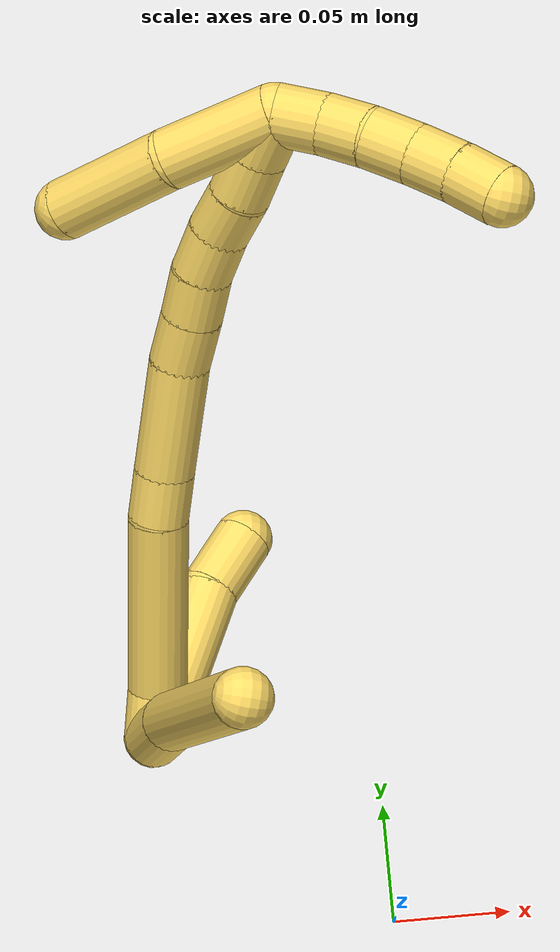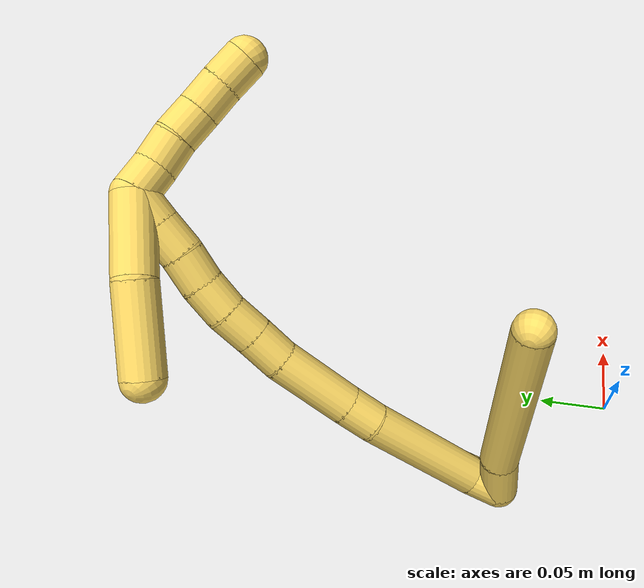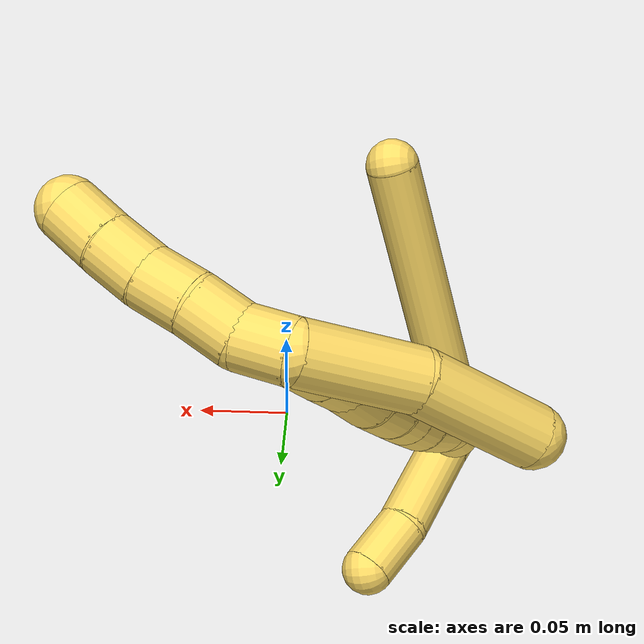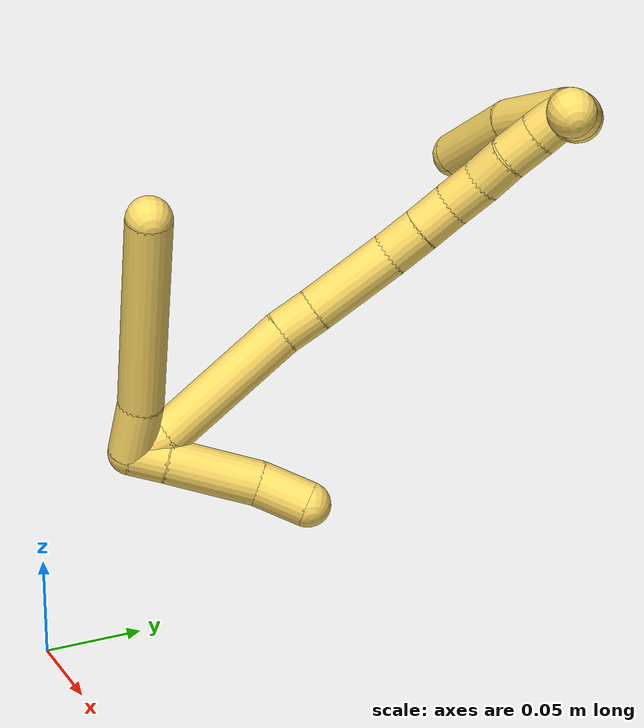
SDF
<sdf version="1.7">
 <world name="default">
  <model name="5">
   <static>0</static>
   <link name="5">
    <collision name="collision-cylinder-e_1_2_8">
     <pose>0.012376 -0.01067 0.000919 1.48484 0.857469 0.794228</pose>
     <geometry><cylinder><radius>0.0125</radius><length>0.032733</length></cylinder></geometry>
     <surface>
      <friction><ode><mu>1.16</mu><mu2>1.16</mu2><slip1>0</slip1><slip2>0</slip2></ode></friction>
      <contact><ode><kp>1e+06</kp><kd>1</kd><max_vel>0</max_vel><min_depth>0.001</min_depth></ode></contact>
     </surface>
    </collision>
    <visual name="visual-cylinder-e_1_2_8">
     <pose>0.012376 -0.01067 0.000919 1.48484 0.857469 0.794228</pose>
     <geometry><cylinder><radius>0.0125</radius><length>0.032733</length></cylinder></geometry>
     <material><ambient>1 0.858824 0.4 1</ambient></material>
    </visual>
    <collision name="collision-cylinder-e_2_8_6">
     <pose>0.06351 -0.065279 0.004093 1.51954 0.722167 0.688924</pose>
     <geometry><cylinder><radius>0.0125</radius><length>0.117267</length></cylinder></geometry>
     <surface>
      <friction><ode><mu>1.16</mu><mu2>1.16</mu2><slip1>0</slip1><slip2>0</slip2></ode></friction>
      <contact><ode><kp>1e+06</kp><kd>1</kd><max_vel>0</max_vel><min_depth>0.001</min_depth></ode></contact>
     </surface>
    </collision>
    <visual name="visual-cylinder-e_2_8_6">
     <pose>0.06351 -0.065279 0.004093 1.51954 0.722167 0.688924</pose>
     <geometry><cylinder><radius>0.0125</radius><length>0.117267</length></cylinder></geometry>
     <material><ambient>1 0.858824 0.4 1</ambient></material>
    </visual>
    <collision name="collision-cylinder-e_1_2_9">
     <pose>0.006253 0.007378 -0.002963 -1.95266 0.666401 -0.946337</pose>
     <geometry><cylinder><radius>0.0125</radius><length>0.02023</length></cylinder></geometry>
     <surface>
      <friction><ode><mu>1.16</mu><mu2>1.16</mu2><slip1>0</slip1><slip2>0</slip2></ode></friction>
      <contact><ode><kp>1e+06</kp><kd>1</kd><max_vel>0</max_vel><min_depth>0.001</min_depth></ode></contact>
     </surface>
    </collision>
    <visual name="visual-cylinder-e_1_2_9">
     <pose>0.006253 0.007378 -0.002963 -1.95266 0.666401 -0.946337</pose>
     <geometry><cylinder><radius>0.0125</radius><length>0.02023</length></cylinder></geometry>
     <material><ambient>1 0.858824 0.4 1</ambient></material>
    </visual>
    <collision name="collision-cylinder-e_2_9_10">
     <pose>0.027452 0.034233 -0.012643 -1.90289 0.627642 -0.854387</pose>
     <geometry><cylinder><radius>0.0125</radius><length>0.050905</length></cylinder></geometry>
     <surface>
      <friction><ode><mu>1.16</mu><mu2>1.16</mu2><slip1>0</slip1><slip2>0</slip2></ode></friction>
      <contact><ode><kp>1e+06</kp><kd>1</kd><max_vel>0</max_vel><min_depth>0.001</min_depth></ode></contact>
     </surface>
    </collision>
    <visual name="visual-cylinder-e_2_9_10">
     <pose>0.027452 0.034233 -0.012643 -1.90289 0.627642 -0.854387</pose>
     <geometry><cylinder><radius>0.0125</radius><length>0.050905</length></cylinder></geometry>
     <material><ambient>1 0.858824 0.4 1</ambient></material>
    </visual>
    <collision name="collision-cylinder-e_3_10_5">
     <pose>0.049868 0.064046 -0.026116 -2.14971 0.543932 -0.951849</pose>
     <geometry><cylinder><radius>0.0125</radius><length>0.028864</length></cylinder></geometry>
     <surface>
      <friction><ode><mu>1.16</mu><mu2>1.16</mu2><slip1>0</slip1><slip2>0</slip2></ode></friction>
      <contact><ode><kp>1e+06</kp><kd>1</kd><max_vel>0</max_vel><min_depth>0.001</min_depth></ode></contact>
     </surface>
    </collision>
    <visual name="visual-cylinder-e_3_10_5">
     <pose>0.049868 0.064046 -0.026116 -2.14971 0.543932 -0.951849</pose>
     <geometry><cylinder><radius>0.0125</radius><length>0.028864</length></cylinder></geometry>
     <material><ambient>1 0.858824 0.4 1</ambient></material>
    </visual>
    <collision name="collision-cylinder-e_1_2_11">
     <pose>0.010019 0.003773 0.001534 -1.18467 1.18469 -0.850463</pose>
     <geometry><cylinder><radius>0.0125</radius><length>0.02163</length></cylinder></geometry>
     <surface>
      <friction><ode><mu>1.16</mu><mu2>1.16</mu2><slip1>0</slip1><slip2>0</slip2></ode></friction>
      <contact><ode><kp>1e+06</kp><kd>1</kd><max_vel>0</max_vel><min_depth>0.001</min_depth></ode></contact>
     </surface>
    </collision>
    <visual name="visual-cylinder-e_1_2_11">
     <pose>0.010019 0.003773 0.001534 -1.18467 1.18469 -0.850463</pose>
     <geometry><cylinder><radius>0.0125</radius><length>0.02163</length></cylinder></geometry>
     <material><ambient>1 0.858824 0.4 1</ambient></material>
    </visual>
    <collision name="collision-cylinder-e_2_11_12">
     <pose>0.05988 0.010656 0.013862 -0.280511 1.29599 -0.212955</pose>
     <geometry><cylinder><radius>0.0125</radius><length>0.082791</length></cylinder></geometry>
     <surface>
      <friction><ode><mu>1.16</mu><mu2>1.16</mu2><slip1>0</slip1><slip2>0</slip2></ode></friction>
      <contact><ode><kp>1e+06</kp><kd>1</kd><max_vel>0</max_vel><min_depth>0.001</min_depth></ode></contact>
     </surface>
    </collision>
    <visual name="visual-cylinder-e_2_11_12">
     <pose>0.05988 0.010656 0.013862 -0.280511 1.29599 -0.212955</pose>
     <geometry><cylinder><radius>0.0125</radius><length>0.082791</length></cylinder></geometry>
     <material><ambient>1 0.858824 0.4 1</ambient></material>
    </visual>
    <collision name="collision-cylinder-e_3_12_13">
     <pose>0.110273 0.015214 0.026192 -0.755815 1.37329 -0.629214</pose>
     <geometry><cylinder><radius>0.0125</radius><length>0.02152</length></cylinder></geometry>
     <surface>
      <friction><ode><mu>1.16</mu><mu2>1.16</mu2><slip1>0</slip1><slip2>0</slip2></ode></friction>
      <contact><ode><kp>1e+06</kp><kd>1</kd><max_vel>0</max_vel><min_depth>0.001</min_depth></ode></contact>
     </surface>
    </collision>
    <visual name="visual-cylinder-e_3_12_13">
     <pose>0.110273 0.015214 0.026192 -0.755815 1.37329 -0.629214</pose>
     <geometry><cylinder><radius>0.0125</radius><length>0.02152</length></cylinder></geometry>
     <material><ambient>1 0.858824 0.4 1</ambient></material>
    </visual>
    <collision name="collision-cylinder-e_4_13_14">
     <pose>0.145334 0.018969 0.031241 -0.581198 1.401 -0.494011</pose>
     <geometry><cylinder><radius>0.0125</radius><length>0.049733</length></cylinder></geometry>
     <surface>
      <friction><ode><mu>1.16</mu><mu2>1.16</mu2><slip1>0</slip1><slip2>0</slip2></ode></friction>
      <contact><ode><kp>1e+06</kp><kd>1</kd><max_vel>0</max_vel><min_depth>0.001</min_depth></ode></contact>
     </surface>
    </collision>
    <visual name="visual-cylinder-e_4_13_14">
     <pose>0.145334 0.018969 0.031241 -0.581198 1.401 -0.494011</pose>
     <geometry><cylinder><radius>0.0125</radius><length>0.049733</length></cylinder></geometry>
     <material><ambient>1 0.858824 0.4 1</ambient></material>
    </visual>
    <collision name="collision-cylinder-e_5_14_15">
     <pose>0.180859 0.021223 0.035401 0.080896 1.51187 0.076269</pose>
     <geometry><cylinder><radius>0.0125</radius><length>0.02207</length></cylinder></geometry>
     <surface>
      <friction><ode><mu>1.16</mu><mu2>1.16</mu2><slip1>0</slip1><slip2>0</slip2></ode></friction>
      <contact><ode><kp>1e+06</kp><kd>1</kd><max_vel>0</max_vel><min_depth>0.001</min_depth></ode></contact>
     </surface>
    </collision>
    <visual name="visual-cylinder-e_5_14_15">
     <pose>0.180859 0.021223 0.035401 0.080896 1.51187 0.076269</pose>
     <geometry><cylinder><radius>0.0125</radius><length>0.02207</length></cylinder></geometry>
     <material><ambient>1 0.858824 0.4 1</ambient></material>
    </visual>
    <collision name="collision-cylinder-e_6_15_16">
     <pose>0.202247 0.021104 0.036974 0.072599 1.48152 0.066395</pose>
     <geometry><cylinder><radius>0.0125</radius><length>0.020827</length></cylinder></geometry>
     <surface>
      <friction><ode><mu>1.16</mu><mu2>1.16</mu2><slip1>0</slip1><slip2>0</slip2></ode></friction>
      <contact><ode><kp>1e+06</kp><kd>1</kd><max_vel>0</max_vel><min_depth>0.001</min_depth></ode></contact>
     </surface>
    </collision>
    <visual name="visual-cylinder-e_6_15_16">
     <pose>0.202247 0.021104 0.036974 0.072599 1.48152 0.066395</pose>
     <geometry><cylinder><radius>0.0125</radius><length>0.020827</length></cylinder></geometry>
     <material><ambient>1 0.858824 0.4 1</ambient></material>
    </visual>
    <collision name="collision-cylinder-e_7_16_17">
     <pose>0.223059 0.020207 0.037488 2.03186 1.48238 1.95108</pose>
     <geometry><cylinder><radius>0.0125</radius><length>0.020963</length></cylinder></geometry>
     <surface>
      <friction><ode><mu>1.16</mu><mu2>1.16</mu2><slip1>0</slip1><slip2>0</slip2></ode></friction>
      <contact><ode><kp>1e+06</kp><kd>1</kd><max_vel>0</max_vel><min_depth>0.001</min_depth></ode></contact>
     </surface>
    </collision>
    <visual name="visual-cylinder-e_7_16_17">
     <pose>0.223059 0.020207 0.037488 2.03186 1.48238 1.95108</pose>
     <geometry><cylinder><radius>0.0125</radius><length>0.020963</length></cylinder></geometry>
     <material><ambient>1 0.858824 0.4 1</ambient></material>
    </visual>
    <collision name="collision-cylinder-e_8_17_18">
     <pose>0.243376 0.0174 0.036023 2.06006 1.34759 1.85197</pose>
     <geometry><cylinder><radius>0.0125</radius><length>0.020257</length></cylinder></geometry>
     <surface>
      <friction><ode><mu>1.16</mu><mu2>1.16</mu2><slip1>0</slip1><slip2>0</slip2></ode></friction>
      <contact><ode><kp>1e+06</kp><kd>1</kd><max_vel>0</max_vel><min_depth>0.001</min_depth></ode></contact>
     </surface>
    </collision>
    <visual name="visual-cylinder-e_8_17_18">
     <pose>0.243376 0.0174 0.036023 2.06006 1.34759 1.85197</pose>
     <geometry><cylinder><radius>0.0125</radius><length>0.020257</length></cylinder></geometry>
     <material><ambient>1 0.858824 0.4 1</ambient></material>
    </visual>
    <collision name="collision-cylinder-e_9_18_19">
     <pose>0.263223 0.014589 0.03448 2.10294 1.47432 2.0177</pose>
     <geometry><cylinder><radius>0.0125</radius><length>0.020032</length></cylinder></geometry>
     <surface>
      <friction><ode><mu>1.16</mu><mu2>1.16</mu2><slip1>0</slip1><slip2>0</slip2></ode></friction>
      <contact><ode><kp>1e+06</kp><kd>1</kd><max_vel>0</max_vel><min_depth>0.001</min_depth></ode></contact>
     </surface>
    </collision>
    <visual name="visual-cylinder-e_9_18_19">
     <pose>0.263223 0.014589 0.03448 2.10294 1.47432 2.0177</pose>
     <geometry><cylinder><radius>0.0125</radius><length>0.020032</length></cylinder></geometry>
     <material><ambient>1 0.858824 0.4 1</ambient></material>
    </visual>
    <collision name="collision-cylinder-e_10_19_1">
     <pose>0.283195 0.012601 0.033378 2.05794 1.4407 1.93934</pose>
     <geometry><cylinder><radius>0.0125</radius><length>0.020177</length></cylinder></geometry>
     <surface>
      <friction><ode><mu>1.16</mu><mu2>1.16</mu2><slip1>0</slip1><slip2>0</slip2></ode></friction>
      <contact><ode><kp>1e+06</kp><kd>1</kd><max_vel>0</max_vel><min_depth>0.001</min_depth></ode></contact>
     </surface>
    </collision>
    <visual name="visual-cylinder-e_10_19_1">
     <pose>0.283195 0.012601 0.033378 2.05794 1.4407 1.93934</pose>
     <geometry><cylinder><radius>0.0125</radius><length>0.020177</length></cylinder></geometry>
     <material><ambient>1 0.858824 0.4 1</ambient></material>
    </visual>
    <collision name="collision-cylinder-e_1_1_20">
     <pose>0.276744 0.015806 0.049173 -0.259777 -0.769722 0.105722</pose>
     <geometry><cylinder><radius>0.0125</radius><length>0.047286</length></cylinder></geometry>
     <surface>
      <friction><ode><mu>1.16</mu><mu2>1.16</mu2><slip1>0</slip1><slip2>0</slip2></ode></friction>
      <contact><ode><kp>1e+06</kp><kd>1</kd><max_vel>0</max_vel><min_depth>0.001</min_depth></ode></contact>
     </surface>
    </collision>
    <visual name="visual-cylinder-e_1_1_20">
     <pose>0.276744 0.015806 0.049173 -0.259777 -0.769722 0.105722</pose>
     <geometry><cylinder><radius>0.0125</radius><length>0.047286</length></cylinder></geometry>
     <material><ambient>1 0.858824 0.4 1</ambient></material>
    </visual>
    <collision name="collision-cylinder-e_2_20_4">
     <pose>0.240169 0.029232 0.079992 -0.561516 -0.868572 0.26593</pose>
     <geometry><cylinder><radius>0.0125</radius><length>0.052714</length></cylinder></geometry>
     <surface>
      <friction><ode><mu>1.16</mu><mu2>1.16</mu2><slip1>0</slip1><slip2>0</slip2></ode></friction>
      <contact><ode><kp>1e+06</kp><kd>1</kd><max_vel>0</max_vel><min_depth>0.001</min_depth></ode></contact>
     </surface>
    </collision>
    <visual name="visual-cylinder-e_2_20_4">
     <pose>0.240169 0.029232 0.079992 -0.561516 -0.868572 0.26593</pose>
     <geometry><cylinder><radius>0.0125</radius><length>0.052714</length></cylinder></geometry>
     <material><ambient>1 0.858824 0.4 1</ambient></material>
    </visual>
    <collision name="collision-cylinder-e_1_1_21">
     <pose>0.294906 0.007953 0.023551 2.77937 0.171646 0.87845</pose>
     <geometry><cylinder><radius>0.0125</radius><length>0.02</length></cylinder></geometry>
     <surface>
      <friction><ode><mu>1.16</mu><mu2>1.16</mu2><slip1>0</slip1><slip2>0</slip2></ode></friction>
      <contact><ode><kp>1e+06</kp><kd>1</kd><max_vel>0</max_vel><min_depth>0.001</min_depth></ode></contact>
     </surface>
    </collision>
    <visual name="visual-cylinder-e_1_1_21">
     <pose>0.294906 0.007953 0.023551 2.77937 0.171646 0.87845</pose>
     <geometry><cylinder><radius>0.0125</radius><length>0.02</length></cylinder></geometry>
     <material><ambient>1 0.858824 0.4 1</ambient></material>
    </visual>
    <collision name="collision-cylinder-e_2_21_22">
     <pose>0.298912 -0.001754 0.006849 2.44883 0.231849 0.624168</pose>
     <geometry><cylinder><radius>0.0125</radius><length>0.02</length></cylinder></geometry>
     <surface>
      <friction><ode><mu>1.16</mu><mu2>1.16</mu2><slip1>0</slip1><slip2>0</slip2></ode></friction>
      <contact><ode><kp>1e+06</kp><kd>1</kd><max_vel>0</max_vel><min_depth>0.001</min_depth></ode></contact>
     </surface>
    </collision>
    <visual name="visual-cylinder-e_2_21_22">
     <pose>0.298912 -0.001754 0.006849 2.44883 0.231849 0.624168</pose>
     <geometry><cylinder><radius>0.0125</radius><length>0.02</length></cylinder></geometry>
     <material><ambient>1 0.858824 0.4 1</ambient></material>
    </visual>
    <collision name="collision-cylinder-e_3_22_23">
     <pose>0.302362 -0.013642 -0.008795 2.53384 0.115473 0.364551</pose>
     <geometry><cylinder><radius>0.0125</radius><length>0.02</length></cylinder></geometry>
     <surface>
      <friction><ode><mu>1.16</mu><mu2>1.16</mu2><slip1>0</slip1><slip2>0</slip2></ode></friction>
      <contact><ode><kp>1e+06</kp><kd>1</kd><max_vel>0</max_vel><min_depth>0.001</min_depth></ode></contact>
     </surface>
    </collision>
    <visual name="visual-cylinder-e_3_22_23">
     <pose>0.302362 -0.013642 -0.008795 2.53384 0.115473 0.364551</pose>
     <geometry><cylinder><radius>0.0125</radius><length>0.02</length></cylinder></geometry>
     <material><ambient>1 0.858824 0.4 1</ambient></material>
    </visual>
    <collision name="collision-cylinder-e_4_23_24">
     <pose>0.304821 -0.02602 -0.024252 2.39871 0.131036 0.333754</pose>
     <geometry><cylinder><radius>0.0125</radius><length>0.02</length></cylinder></geometry>
     <surface>
      <friction><ode><mu>1.16</mu><mu2>1.16</mu2><slip1>0</slip1><slip2>0</slip2></ode></friction>
      <contact><ode><kp>1e+06</kp><kd>1</kd><max_vel>0</max_vel><min_depth>0.001</min_depth></ode></contact>
     </surface>
    </collision>
    <visual name="visual-cylinder-e_4_23_24">
     <pose>0.304821 -0.02602 -0.024252 2.39871 0.131036 0.333754</pose>
     <geometry><cylinder><radius>0.0125</radius><length>0.02</length></cylinder></geometry>
     <material><ambient>1 0.858824 0.4 1</ambient></material>
    </visual>
    <collision name="collision-cylinder-e_5_24_3">
     <pose>0.306905 -0.039804 -0.038575 2.35217 0.077876 0.186495</pose>
     <geometry><cylinder><radius>0.0125</radius><length>0.02</length></cylinder></geometry>
     <surface>
      <friction><ode><mu>1.16</mu><mu2>1.16</mu2><slip1>0</slip1><slip2>0</slip2></ode></friction>
      <contact><ode><kp>1e+06</kp><kd>1</kd><max_vel>0</max_vel><min_depth>0.001</min_depth></ode></contact>
     </surface>
    </collision>
    <visual name="visual-cylinder-e_5_24_3">
     <pose>0.306905 -0.039804 -0.038575 2.35217 0.077876 0.186495</pose>
     <geometry><cylinder><radius>0.0125</radius><length>0.02</length></cylinder></geometry>
     <material><ambient>1 0.858824 0.4 1</ambient></material>
    </visual>
    <collision name="collision-sphere-3">
     <pose>0.307683 -0.046882 -0.045596 0 -0 0</pose>
     <geometry><sphere><radius>0.0125</radius></sphere></geometry>
     <surface>
      <friction><ode><mu>1.16</mu><mu2>1.16</mu2><slip1>0</slip1><slip2>0</slip2></ode></friction>
      <contact><ode><kp>1e+06</kp><kd>1</kd><max_vel>0</max_vel><min_depth>0.001</min_depth></ode></contact>
     </surface>
    </collision>
    <visual name="visual-sphere-3">
     <pose>0.307683 -0.046882 -0.045596 0 -0 0</pose>
     <geometry><sphere><radius>0.0125</radius></sphere></geometry>
     <material><ambient>1 0.858824 0.4 1</ambient></material>
    </visual>
    <collision name="collision-sphere-24">
     <pose>0.306128 -0.032726 -0.031554 0 -0 0</pose>
     <geometry><sphere><radius>0.0125</radius></sphere></geometry>
     <surface>
      <friction><ode><mu>1.16</mu><mu2>1.16</mu2><slip1>0</slip1><slip2>0</slip2></ode></friction>
      <contact><ode><kp>1e+06</kp><kd>1</kd><max_vel>0</max_vel><min_depth>0.001</min_depth></ode></contact>
     </surface>
    </collision>
    <visual name="visual-sphere-24">
     <pose>0.306128 -0.032726 -0.031554 0 -0 0</pose>
     <geometry><sphere><radius>0.0125</radius></sphere></geometry>
     <material><ambient>1 0.858824 0.4 1</ambient></material>
    </visual>
    <collision name="collision-sphere-23">
     <pose>0.303514 -0.019314 -0.01695 0 -0 0</pose>
     <geometry><sphere><radius>0.0125</radius></sphere></geometry>
     <surface>
      <friction><ode><mu>1.16</mu><mu2>1.16</mu2><slip1>0</slip1><slip2>0</slip2></ode></friction>
      <contact><ode><kp>1e+06</kp><kd>1</kd><max_vel>0</max_vel><min_depth>0.001</min_depth></ode></contact>
     </surface>
    </collision>
    <visual name="visual-sphere-23">
     <pose>0.303514 -0.019314 -0.01695 0 -0 0</pose>
     <geometry><sphere><radius>0.0125</radius></sphere></geometry>
     <material><ambient>1 0.858824 0.4 1</ambient></material>
    </visual>
    <collision name="collision-sphere-22">
     <pose>0.30121 -0.00797 -0.00064 0 -0 0</pose>
     <geometry><sphere><radius>0.0125</radius></sphere></geometry>
     <surface>
      <friction><ode><mu>1.16</mu><mu2>1.16</mu2><slip1>0</slip1><slip2>0</slip2></ode></friction>
      <contact><ode><kp>1e+06</kp><kd>1</kd><max_vel>0</max_vel><min_depth>0.001</min_depth></ode></contact>
     </surface>
    </collision>
    <visual name="visual-sphere-22">
     <pose>0.30121 -0.00797 -0.00064 0 -0 0</pose>
     <geometry><sphere><radius>0.0125</radius></sphere></geometry>
     <material><ambient>1 0.858824 0.4 1</ambient></material>
    </visual>
    <collision name="collision-sphere-21">
     <pose>0.296614 0.004462 0.014338 0 -0 0</pose>
     <geometry><sphere><radius>0.0125</radius></sphere></geometry>
     <surface>
      <friction><ode><mu>1.16</mu><mu2>1.16</mu2><slip1>0</slip1><slip2>0</slip2></ode></friction>
      <contact><ode><kp>1e+06</kp><kd>1</kd><max_vel>0</max_vel><min_depth>0.001</min_depth></ode></contact>
     </surface>
    </collision>
    <visual name="visual-sphere-21">
     <pose>0.296614 0.004462 0.014338 0 -0 0</pose>
     <geometry><sphere><radius>0.0125</radius></sphere></geometry>
     <material><ambient>1 0.858824 0.4 1</ambient></material>
    </visual>
    <collision name="collision-sphere-4">
     <pose>0.220048 0.038297 0.094403 0 -0 0</pose>
     <geometry><sphere><radius>0.0125</radius></sphere></geometry>
     <surface>
      <friction><ode><mu>1.16</mu><mu2>1.16</mu2><slip1>0</slip1><slip2>0</slip2></ode></friction>
      <contact><ode><kp>1e+06</kp><kd>1</kd><max_vel>0</max_vel><min_depth>0.001</min_depth></ode></contact>
     </surface>
    </collision>
    <visual name="visual-sphere-4">
     <pose>0.220048 0.038297 0.094403 0 -0 0</pose>
     <geometry><sphere><radius>0.0125</radius></sphere></geometry>
     <material><ambient>1 0.858824 0.4 1</ambient></material>
    </visual>
    <collision name="collision-sphere-20">
     <pose>0.260291 0.020167 0.065582 0 -0 0</pose>
     <geometry><sphere><radius>0.0125</radius></sphere></geometry>
     <surface>
      <friction><ode><mu>1.16</mu><mu2>1.16</mu2><slip1>0</slip1><slip2>0</slip2></ode></friction>
      <contact><ode><kp>1e+06</kp><kd>1</kd><max_vel>0</max_vel><min_depth>0.001</min_depth></ode></contact>
     </surface>
    </collision>
    <visual name="visual-sphere-20">
     <pose>0.260291 0.020167 0.065582 0 -0 0</pose>
     <geometry><sphere><radius>0.0125</radius></sphere></geometry>
     <material><ambient>1 0.858824 0.4 1</ambient></material>
    </visual>
    <collision name="collision-sphere-5">
     <pose>0.057337 0.074383 -0.032872 0 -0 0</pose>
     <geometry><sphere><radius>0.0125</radius></sphere></geometry>
     <surface>
      <friction><ode><mu>1.16</mu><mu2>1.16</mu2><slip1>0</slip1><slip2>0</slip2></ode></friction>
      <contact><ode><kp>1e+06</kp><kd>1</kd><max_vel>0</max_vel><min_depth>0.001</min_depth></ode></contact>
     </surface>
    </collision>
    <visual name="visual-sphere-5">
     <pose>0.057337 0.074383 -0.032872 0 -0 0</pose>
     <geometry><sphere><radius>0.0125</radius></sphere></geometry>
     <material><ambient>1 0.858824 0.4 1</ambient></material>
    </visual>
    <collision name="collision-sphere-10">
     <pose>0.042399 0.053709 -0.019359 0 -0 0</pose>
     <geometry><sphere><radius>0.0125</radius></sphere></geometry>
     <surface>
      <friction><ode><mu>1.16</mu><mu2>1.16</mu2><slip1>0</slip1><slip2>0</slip2></ode></friction>
      <contact><ode><kp>1e+06</kp><kd>1</kd><max_vel>0</max_vel><min_depth>0.001</min_depth></ode></contact>
     </surface>
    </collision>
    <visual name="visual-sphere-10">
     <pose>0.042399 0.053709 -0.019359 0 -0 0</pose>
     <geometry><sphere><radius>0.0125</radius></sphere></geometry>
     <material><ambient>1 0.858824 0.4 1</ambient></material>
    </visual>
    <collision name="collision-sphere-6">
     <pose>0.102267 -0.109219 0.006347 0 -0 0</pose>
     <geometry><sphere><radius>0.0125</radius></sphere></geometry>
     <surface>
      <friction><ode><mu>1.16</mu><mu2>1.16</mu2><slip1>0</slip1><slip2>0</slip2></ode></friction>
      <contact><ode><kp>1e+06</kp><kd>1</kd><max_vel>0</max_vel><min_depth>0.001</min_depth></ode></contact>
     </surface>
    </collision>
    <visual name="visual-sphere-6">
     <pose>0.102267 -0.109219 0.006347 0 -0 0</pose>
     <geometry><sphere><radius>0.0125</radius></sphere></geometry>
     <material><ambient>1 0.858824 0.4 1</ambient></material>
    </visual>
    <collision name="collision-sphere-9">
     <pose>0.012506 0.014757 -0.005926 0 -0 0</pose>
     <geometry><sphere><radius>0.0125</radius></sphere></geometry>
     <surface>
      <friction><ode><mu>1.16</mu><mu2>1.16</mu2><slip1>0</slip1><slip2>0</slip2></ode></friction>
      <contact><ode><kp>1e+06</kp><kd>1</kd><max_vel>0</max_vel><min_depth>0.001</min_depth></ode></contact>
     </surface>
    </collision>
    <visual name="visual-sphere-9">
     <pose>0.012506 0.014757 -0.005926 0 -0 0</pose>
     <geometry><sphere><radius>0.0125</radius></sphere></geometry>
     <material><ambient>1 0.858824 0.4 1</ambient></material>
    </visual>
    <collision name="collision-sphere-2">
     <geometry><sphere><radius>0.0125</radius></sphere></geometry>
     <surface>
      <friction><ode><mu>1.16</mu><mu2>1.16</mu2><slip1>0</slip1><slip2>0</slip2></ode></friction>
      <contact><ode><kp>1e+06</kp><kd>1</kd><max_vel>0</max_vel><min_depth>0.001</min_depth></ode></contact>
     </surface>
    </collision>
    <visual name="visual-sphere-2">
     <geometry><sphere><radius>0.0125</radius></sphere></geometry>
     <material><ambient>1 0.858824 0.4 1</ambient></material>
    </visual>
    <collision name="collision-sphere-19">
     <pose>0.273192 0.013758 0.03399 0 -0 0</pose>
     <geometry><sphere><radius>0.0125</radius></sphere></geometry>
     <surface>
      <friction><ode><mu>1.16</mu><mu2>1.16</mu2><slip1>0</slip1><slip2>0</slip2></ode></friction>
      <contact><ode><kp>1e+06</kp><kd>1</kd><max_vel>0</max_vel><min_depth>0.001</min_depth></ode></contact>
     </surface>
    </collision>
    <visual name="visual-sphere-19">
     <pose>0.273192 0.013758 0.03399 0 -0 0</pose>
     <geometry><sphere><radius>0.0125</radius></sphere></geometry>
     <material><ambient>1 0.858824 0.4 1</ambient></material>
    </visual>
    <collision name="collision-sphere-8">
     <pose>0.024752 -0.02134 0.001839 0 -0 0</pose>
     <geometry><sphere><radius>0.0125</radius></sphere></geometry>
     <surface>
      <friction><ode><mu>1.16</mu><mu2>1.16</mu2><slip1>0</slip1><slip2>0</slip2></ode></friction>
      <contact><ode><kp>1e+06</kp><kd>1</kd><max_vel>0</max_vel><min_depth>0.001</min_depth></ode></contact>
     </surface>
    </collision>
    <visual name="visual-sphere-8">
     <pose>0.024752 -0.02134 0.001839 0 -0 0</pose>
     <geometry><sphere><radius>0.0125</radius></sphere></geometry>
     <material><ambient>1 0.858824 0.4 1</ambient></material>
    </visual>
    <collision name="collision-sphere-11">
     <pose>0.020038 0.007546 0.003068 0 -0 0</pose>
     <geometry><sphere><radius>0.0125</radius></sphere></geometry>
     <surface>
      <friction><ode><mu>1.16</mu><mu2>1.16</mu2><slip1>0</slip1><slip2>0</slip2></ode></friction>
      <contact><ode><kp>1e+06</kp><kd>1</kd><max_vel>0</max_vel><min_depth>0.001</min_depth></ode></contact>
     </surface>
    </collision>
    <visual name="visual-sphere-11">
     <pose>0.020038 0.007546 0.003068 0 -0 0</pose>
     <geometry><sphere><radius>0.0125</radius></sphere></geometry>
     <material><ambient>1 0.858824 0.4 1</ambient></material>
    </visual>
    <collision name="collision-sphere-12">
     <pose>0.099723 0.013765 0.024656 0 -0 0</pose>
     <geometry><sphere><radius>0.0125</radius></sphere></geometry>
     <surface>
      <friction><ode><mu>1.16</mu><mu2>1.16</mu2><slip1>0</slip1><slip2>0</slip2></ode></friction>
      <contact><ode><kp>1e+06</kp><kd>1</kd><max_vel>0</max_vel><min_depth>0.001</min_depth></ode></contact>
     </surface>
    </collision>
    <visual name="visual-sphere-12">
     <pose>0.099723 0.013765 0.024656 0 -0 0</pose>
     <geometry><sphere><radius>0.0125</radius></sphere></geometry>
     <material><ambient>1 0.858824 0.4 1</ambient></material>
    </visual>
    <collision name="collision-sphere-13">
     <pose>0.120824 0.016662 0.027729 0 -0 0</pose>
     <geometry><sphere><radius>0.0125</radius></sphere></geometry>
     <surface>
      <friction><ode><mu>1.16</mu><mu2>1.16</mu2><slip1>0</slip1><slip2>0</slip2></ode></friction>
      <contact><ode><kp>1e+06</kp><kd>1</kd><max_vel>0</max_vel><min_depth>0.001</min_depth></ode></contact>
     </surface>
    </collision>
    <visual name="visual-sphere-13">
     <pose>0.120824 0.016662 0.027729 0 -0 0</pose>
     <geometry><sphere><radius>0.0125</radius></sphere></geometry>
     <material><ambient>1 0.858824 0.4 1</ambient></material>
    </visual>
    <collision name="collision-sphere-14">
     <pose>0.169843 0.021276 0.034753 0 -0 0</pose>
     <geometry><sphere><radius>0.0125</radius></sphere></geometry>
     <surface>
      <friction><ode><mu>1.16</mu><mu2>1.16</mu2><slip1>0</slip1><slip2>0</slip2></ode></friction>
      <contact><ode><kp>1e+06</kp><kd>1</kd><max_vel>0</max_vel><min_depth>0.001</min_depth></ode></contact>
     </surface>
    </collision>
    <visual name="visual-sphere-14">
     <pose>0.169843 0.021276 0.034753 0 -0 0</pose>
     <geometry><sphere><radius>0.0125</radius></sphere></geometry>
     <material><ambient>1 0.858824 0.4 1</ambient></material>
    </visual>
    <collision name="collision-sphere-15">
     <pose>0.191875 0.021171 0.036048 0 -0 0</pose>
     <geometry><sphere><radius>0.0125</radius></sphere></geometry>
     <surface>
      <friction><ode><mu>1.16</mu><mu2>1.16</mu2><slip1>0</slip1><slip2>0</slip2></ode></friction>
      <contact><ode><kp>1e+06</kp><kd>1</kd><max_vel>0</max_vel><min_depth>0.001</min_depth></ode></contact>
     </surface>
    </collision>
    <visual name="visual-sphere-15">
     <pose>0.191875 0.021171 0.036048 0 -0 0</pose>
     <geometry><sphere><radius>0.0125</radius></sphere></geometry>
     <material><ambient>1 0.858824 0.4 1</ambient></material>
    </visual>
    <collision name="collision-sphere-16">
     <pose>0.212619 0.021036 0.0379 0 -0 0</pose>
     <geometry><sphere><radius>0.0125</radius></sphere></geometry>
     <surface>
      <friction><ode><mu>1.16</mu><mu2>1.16</mu2><slip1>0</slip1><slip2>0</slip2></ode></friction>
      <contact><ode><kp>1e+06</kp><kd>1</kd><max_vel>0</max_vel><min_depth>0.001</min_depth></ode></contact>
     </surface>
    </collision>
    <visual name="visual-sphere-16">
     <pose>0.212619 0.021036 0.0379 0 -0 0</pose>
     <geometry><sphere><radius>0.0125</radius></sphere></geometry>
     <material><ambient>1 0.858824 0.4 1</ambient></material>
    </visual>
    <collision name="collision-sphere-17">
     <pose>0.233499 0.019379 0.037077 0 -0 0</pose>
     <geometry><sphere><radius>0.0125</radius></sphere></geometry>
     <surface>
      <friction><ode><mu>1.16</mu><mu2>1.16</mu2><slip1>0</slip1><slip2>0</slip2></ode></friction>
      <contact><ode><kp>1e+06</kp><kd>1</kd><max_vel>0</max_vel><min_depth>0.001</min_depth></ode></contact>
     </surface>
    </collision>
    <visual name="visual-sphere-17">
     <pose>0.233499 0.019379 0.037077 0 -0 0</pose>
     <geometry><sphere><radius>0.0125</radius></sphere></geometry>
     <material><ambient>1 0.858824 0.4 1</ambient></material>
    </visual>
    <collision name="collision-sphere-18">
     <pose>0.253254 0.015421 0.034969 0 -0 0</pose>
     <geometry><sphere><radius>0.0125</radius></sphere></geometry>
     <surface>
      <friction><ode><mu>1.16</mu><mu2>1.16</mu2><slip1>0</slip1><slip2>0</slip2></ode></friction>
      <contact><ode><kp>1e+06</kp><kd>1</kd><max_vel>0</max_vel><min_depth>0.001</min_depth></ode></contact>
     </surface>
    </collision>
    <visual name="visual-sphere-18">
     <pose>0.253254 0.015421 0.034969 0 -0 0</pose>
     <geometry><sphere><radius>0.0125</radius></sphere></geometry>
     <material><ambient>1 0.858824 0.4 1</ambient></material>
    </visual>
    <collision name="collision-sphere-1">
     <pose>0.293198 0.011445 0.032765 0 -0 0</pose>
     <geometry><sphere><radius>0.0125</radius></sphere></geometry>
     <surface>
      <friction><ode><mu>1.16</mu><mu2>1.16</mu2><slip1>0</slip1><slip2>0</slip2></ode></friction>
      <contact><ode><kp>1e+06</kp><kd>1</kd><max_vel>0</max_vel><min_depth>0.001</min_depth></ode></contact>
     </surface>
    </collision>
    <visual name="visual-sphere-1">
     <pose>0.293198 0.011445 0.032765 0 -0 0</pose>
     <geometry><sphere><radius>0.0125</radius></sphere></geometry>
     <material><ambient>1 0.858824 0.4 1</ambient></material>
    </visual>
    <inertial>
     <pose>0.147057 0.001366 0.016666 0 -0 0</pose>
     <mass>0.75</mass>
     <inertia>
      <ixx>0.000221</ixx>
      <ixy>0</ixy>
      <ixz>0</ixz>
      <iyy>0.000219</iyy>
      <iyz>0</iyz>
      <izz>-7.6e-05</izz>
     </inertia>
    </inertial>
   </link>
   <pose>-0.094357 0.083024 0.055108 -1.18599 -0.664022 1.10847</pose>
  </model>
 </world>
</sdf>
